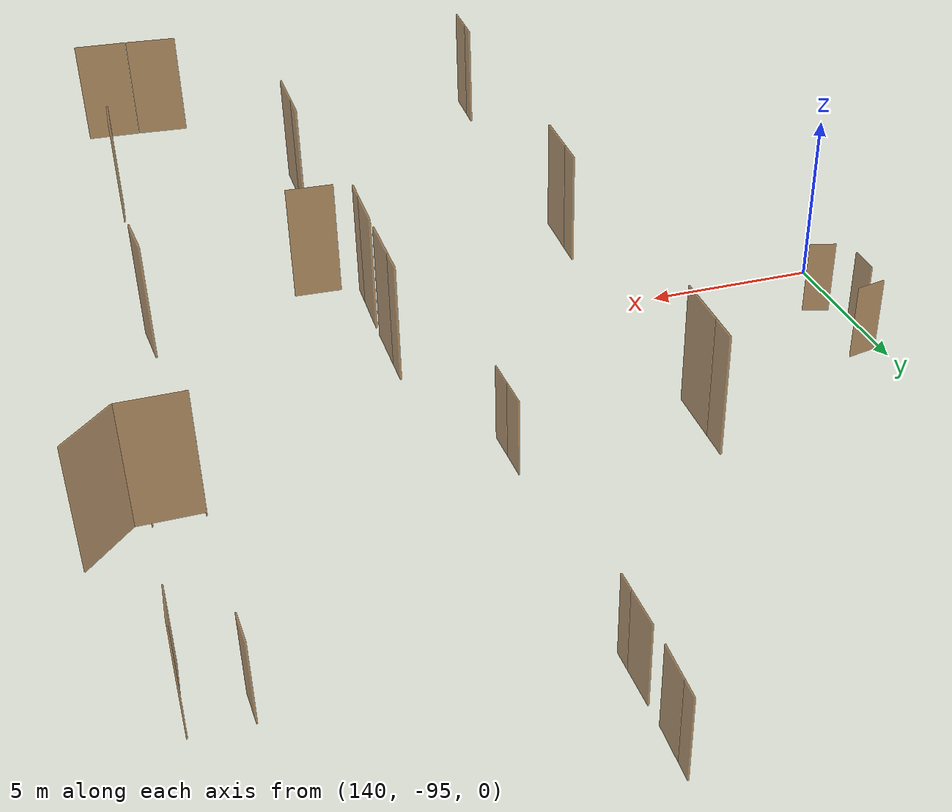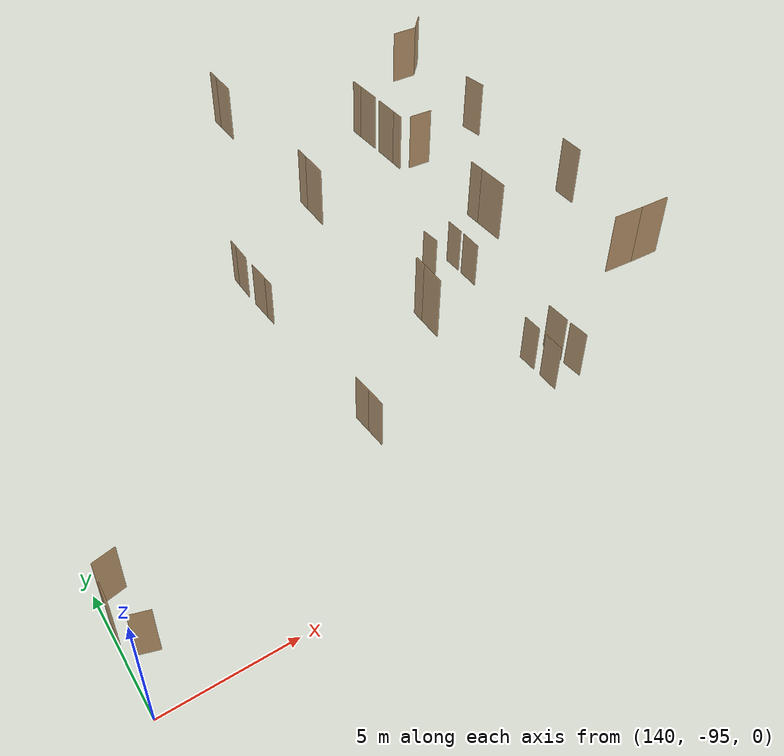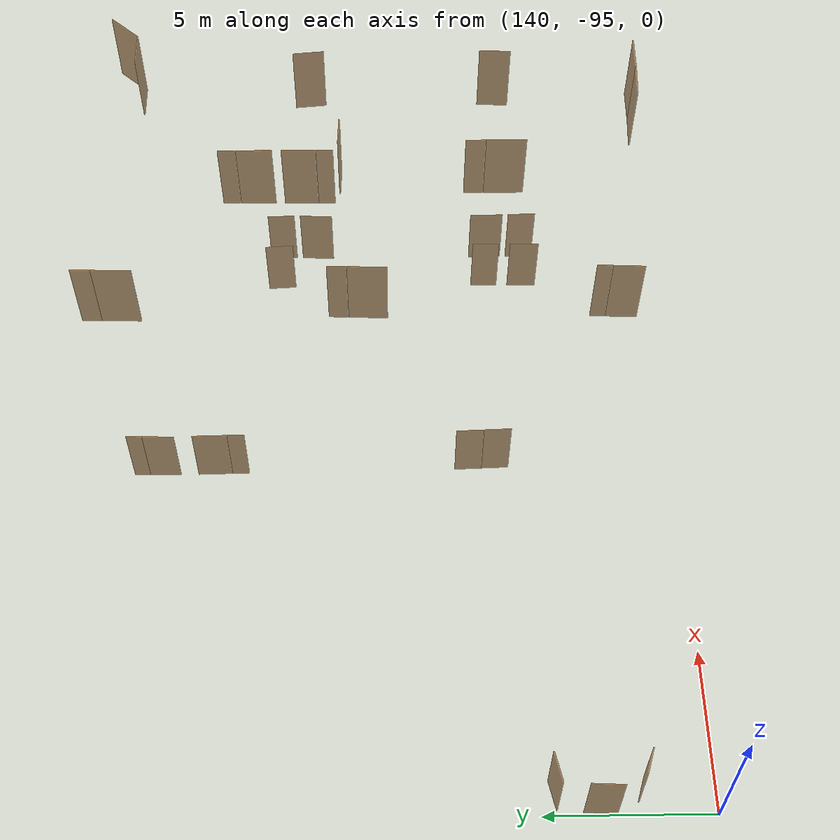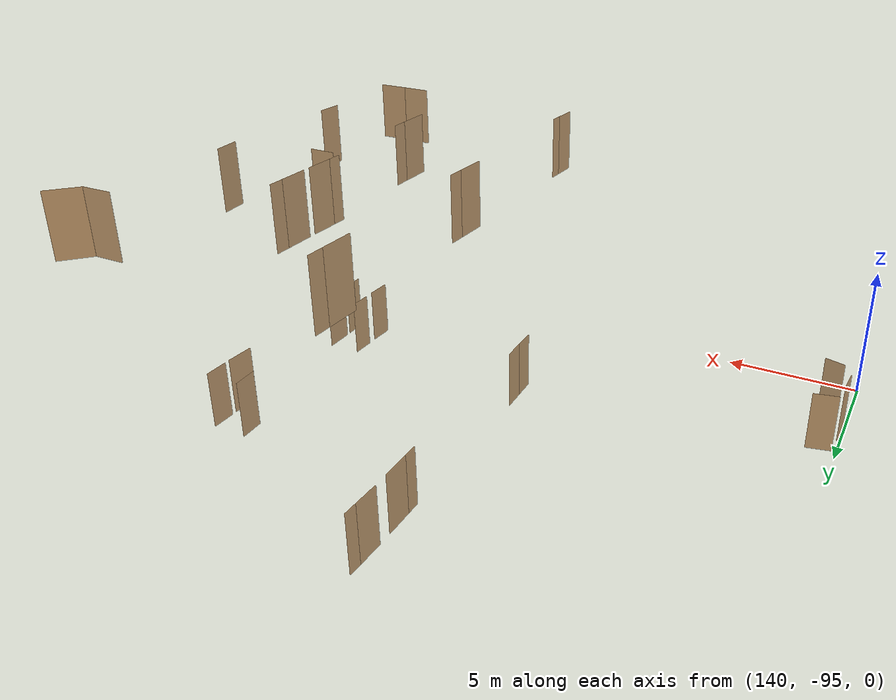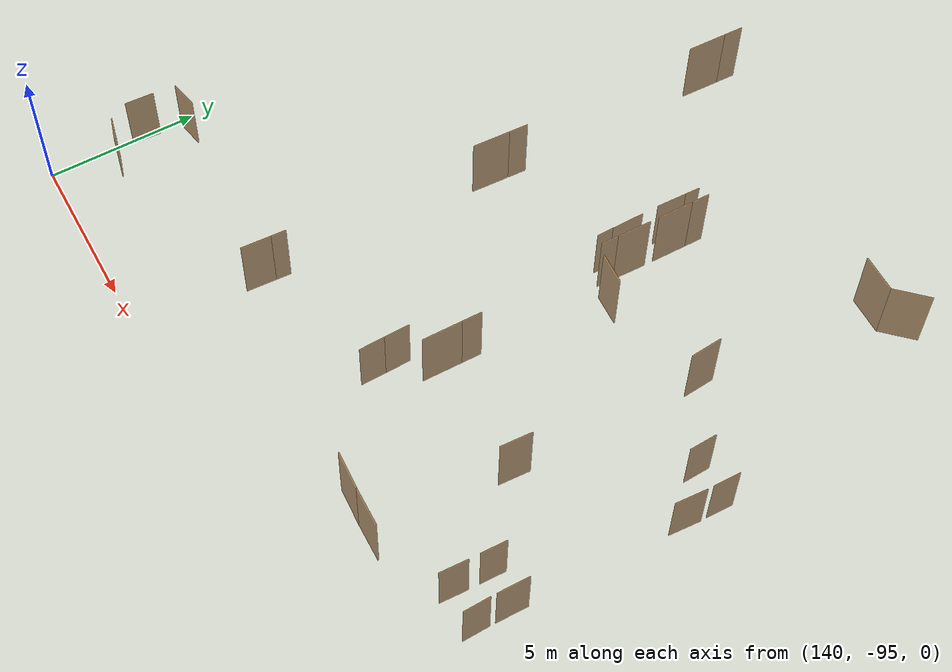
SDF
<sdf version="1.7">
 <world name="sim_world">
  <model name="puerta82">
   <pose>160.45645597633776 -90.47160245541252 0.0 0 0 1.6164788078695695</pose>
   <link name="right">
    <pose>0 0 1.11 0 0 0</pose>
    <visual name="right_visual">
     <geometry><box><size>0.9186907120669721 0.03 2.2</size></box></geometry>
     <material>
      <ambient>0.5 0.25 0 0.6</ambient>
      <diffuse>0.5 0.25 0 0.6</diffuse>
      <pbr><metal><metalness>0.0</metalness></metal></pbr>
     </material>
    </visual>
    <collision name="right_collision">
     <geometry><box><size>0.9186907120669721 0.03 2.2</size></box></geometry>
     <surface><contact><collide_bitmask>0x02</collide_bitmask></contact></surface>
    </collision>
    <inertial>
     <mass>50.0</mass>
     <inertia><ixx>20.17041666666667</ixx><iyy>23.683302601825506</iyy><izz>3.5203859351588345</izz></inertia>
    </inertial>
   </link>
   <joint name="right_joint" type="revolute">
    <parent>world</parent>
    <child>right</child>
    <axis><xyz>0 0 1</xyz><limit><lower>0</lower><upper>1.57</upper></limit></axis>
    <pose>0.46434535603348603 0 0 0 0 0</pose>
   </joint>
   <plugin name="register_component" filename="libregister_component.so">
    <component name="Door">
     <v_max_door>0.5</v_max_door>
     <a_max_door>0.3</a_max_door>
     <a_nom_door>0.15</a_nom_door>
     <dx_min_door>0.01</dx_min_door>
     <f_max_door>500.0</f_max_door>
     <ros_interface>true</ros_interface>
     <door name="puerta82" type="SwingDoor" left_joint_name="empty_joint" right_joint_name="right_joint"/>
    </component>
   </plugin>
  </model>
  <model name="puerta83">
   <pose>159.1280466511555 -90.49268130545818 0.0 0 0 1.5417831272589189</pose>
   <link name="right">
    <pose>0 0 1.11 0 0 0</pose>
    <visual name="right_visual">
     <geometry><box><size>0.9602878923284857 0.03 2.2</size></box></geometry>
     <material>
      <ambient>0.5 0.25 0 0.6</ambient>
      <diffuse>0.5 0.25 0 0.6</diffuse>
      <pbr><metal><metalness>0.0</metalness></metal></pbr>
     </material>
    </visual>
    <collision name="right_collision">
     <geometry><box><size>0.9602878923284857 0.03 2.2</size></box></geometry>
     <surface><contact><collide_bitmask>0x02</collide_bitmask></contact></surface>
    </collision>
    <inertial>
     <mass>50.0</mass>
     <inertia><ixx>20.17041666666667</ixx><iyy>24.008970150636195</iyy><izz>3.846053483969522</izz></inertia>
    </inertial>
   </link>
   <joint name="right_joint" type="revolute">
    <parent>world</parent>
    <child>right</child>
    <axis><xyz>0 0 -1</xyz><limit><lower>0</lower><upper>1.57</upper></limit></axis>
    <pose>0.48514394616424283 0 0 0 0 0</pose>
   </joint>
   <plugin name="register_component" filename="libregister_component.so">
    <component name="Door">
     <v_max_door>0.5</v_max_door>
     <a_max_door>0.3</a_max_door>
     <a_nom_door>0.15</a_nom_door>
     <dx_min_door>0.01</dx_min_door>
     <f_max_door>500.0</f_max_door>
     <ros_interface>true</ros_interface>
     <door name="puerta83" type="SwingDoor" left_joint_name="empty_joint" right_joint_name="right_joint"/>
    </component>
   </plugin>
  </model>
  <model name="puerta84">
   <pose>159.14756877974068 -89.19532226237905 0.0 0 0 -1.582985679288863</pose>
   <link name="right">
    <pose>0 0 1.11 0 0 0</pose>
    <visual name="right_visual">
     <geometry><box><size>0.8840031950947633 0.03 2.2</size></box></geometry>
     <material>
      <ambient>0.5 0.25 0 0.6</ambient>
      <diffuse>0.5 0.25 0 0.6</diffuse>
      <pbr><metal><metalness>0.0</metalness></metal></pbr>
     </material>
    </visual>
    <collision name="right_collision">
     <geometry><box><size>0.8840031950947633 0.03 2.2</size></box></geometry>
     <surface><contact><collide_bitmask>0x02</collide_bitmask></contact></surface>
    </collision>
    <inertial>
     <mass>50.0</mass>
     <inertia><ixx>20.17041666666667</ixx><iyy>23.422756870573963</iyy><izz>3.2598402039072925</izz></inertia>
    </inertial>
   </link>
   <joint name="right_joint" type="revolute">
    <parent>world</parent>
    <child>right</child>
    <axis><xyz>0 0 1</xyz><limit><lower>0</lower><upper>1.57</upper></limit></axis>
    <pose>0.44700159754738167 0 0 0 0 0</pose>
   </joint>
   <plugin name="register_component" filename="libregister_component.so">
    <component name="Door">
     <v_max_door>0.5</v_max_door>
     <a_max_door>0.3</a_max_door>
     <a_nom_door>0.15</a_nom_door>
     <dx_min_door>0.01</dx_min_door>
     <f_max_door>500.0</f_max_door>
     <ros_interface>true</ros_interface>
     <door name="puerta84" type="SwingDoor" left_joint_name="empty_joint" right_joint_name="right_joint"/>
    </component>
   </plugin>
  </model>
  <model name="puerta85">
   <pose>160.43272649245404 -89.271496430059 0.0 0 0 -1.5662357016798674</pose>
   <link name="right">
    <pose>0 0 1.11 0 0 0</pose>
    <visual name="right_visual">
     <geometry><box><size>1.097050839072088 0.03 2.2</size></box></geometry>
     <material>
      <ambient>0.5 0.25 0 0.6</ambient>
      <diffuse>0.5 0.25 0 0.6</diffuse>
      <pbr><metal><metalness>0.0</metalness></metal></pbr>
     </material>
    </visual>
    <collision name="right_collision">
     <geometry><box><size>1.097050839072088 0.03 2.2</size></box></geometry>
     <surface><contact><collide_bitmask>0x02</collide_bitmask></contact></surface>
    </collision>
    <inertial>
     <mass>50.0</mass>
     <inertia><ixx>20.17041666666667</ixx><iyy>25.181335597953222</iyy><izz>5.018418931286551</izz></inertia>
    </inertial>
   </link>
   <joint name="right_joint" type="revolute">
    <parent>world</parent>
    <child>right</child>
    <axis><xyz>0 0 -1</xyz><limit><lower>0</lower><upper>1.57</upper></limit></axis>
    <pose>0.553525419536044 0 0 0 0 0</pose>
   </joint>
   <plugin name="register_component" filename="libregister_component.so">
    <component name="Door">
     <v_max_door>0.5</v_max_door>
     <a_max_door>0.3</a_max_door>
     <a_nom_door>0.15</a_nom_door>
     <dx_min_door>0.01</dx_min_door>
     <f_max_door>500.0</f_max_door>
     <ros_interface>true</ros_interface>
     <door name="puerta85" type="SwingDoor" left_joint_name="empty_joint" right_joint_name="right_joint"/>
    </component>
   </plugin>
  </model>
  <model name="puerta86">
   <pose>160.45538310073664 -83.41704567925645 0.0 0 0 1.524645002181131</pose>
   <link name="right">
    <pose>0 0 1.11 0 0 0</pose>
    <visual name="right_visual">
     <geometry><box><size>1.0816246900873259 0.03 2.2</size></box></geometry>
     <material>
      <ambient>0.5 0.25 0 0.6</ambient>
      <diffuse>0.5 0.25 0 0.6</diffuse>
      <pbr><metal><metalness>0.0</metalness></metal></pbr>
     </material>
    </visual>
    <collision name="right_collision">
     <geometry><box><size>1.0816246900873259 0.03 2.2</size></box></geometry>
     <surface><contact><collide_bitmask>0x02</collide_bitmask></contact></surface>
    </collision>
    <inertial>
     <mass>50.0</mass>
     <inertia><ixx>20.17041666666667</ixx><iyy>25.041299875860435</iyy><izz>4.878383209193766</izz></inertia>
    </inertial>
   </link>
   <joint name="right_joint" type="revolute">
    <parent>world</parent>
    <child>right</child>
    <axis><xyz>0 0 1</xyz><limit><lower>0</lower><upper>1.57</upper></limit></axis>
    <pose>0.5458123450436629 0 0 0 0 0</pose>
   </joint>
   <plugin name="register_component" filename="libregister_component.so">
    <component name="Door">
     <v_max_door>0.5</v_max_door>
     <a_max_door>0.3</a_max_door>
     <a_nom_door>0.15</a_nom_door>
     <dx_min_door>0.01</dx_min_door>
     <f_max_door>500.0</f_max_door>
     <ros_interface>true</ros_interface>
     <door name="puerta86" type="SwingDoor" left_joint_name="empty_joint" right_joint_name="right_joint"/>
    </component>
   </plugin>
  </model>
  <model name="puerta87">
   <pose>159.1257326057413 -82.19825899637743 0.0 0 0 -1.512059108779797</pose>
   <link name="right">
    <pose>0 0 1.11 0 0 0</pose>
    <visual name="right_visual">
     <geometry><box><size>0.9195773728870581 0.03 2.2</size></box></geometry>
     <material>
      <ambient>0.5 0.25 0 0.6</ambient>
      <diffuse>0.5 0.25 0 0.6</diffuse>
      <pbr><metal><metalness>0.0</metalness></metal></pbr>
     </material>
    </visual>
    <collision name="right_collision">
     <geometry><box><size>0.9195773728870581 0.03 2.2</size></box></geometry>
     <surface><contact><collide_bitmask>0x02</collide_bitmask></contact></surface>
    </collision>
    <inertial>
     <mass>50.0</mass>
     <inertia><ixx>20.17041666666667</ixx><iyy>23.69009393635777</iyy><izz>3.5271772696910983</izz></inertia>
    </inertial>
   </link>
   <joint name="right_joint" type="revolute">
    <parent>world</parent>
    <child>right</child>
    <axis><xyz>0 0 1</xyz><limit><lower>0</lower><upper>1.57</upper></limit></axis>
    <pose>0.46478868644352905 0 0 0 0 0</pose>
   </joint>
   <plugin name="register_component" filename="libregister_component.so">
    <component name="Door">
     <v_max_door>0.5</v_max_door>
     <a_max_door>0.3</a_max_door>
     <a_nom_door>0.15</a_nom_door>
     <dx_min_door>0.01</dx_min_door>
     <f_max_door>500.0</f_max_door>
     <ros_interface>true</ros_interface>
     <door name="puerta87" type="SwingDoor" left_joint_name="empty_joint" right_joint_name="right_joint"/>
    </component>
   </plugin>
  </model>
  <model name="puerta88">
   <pose>160.4764829875588 -82.2238817901455 0.0 0 0 -1.573382687183463</pose>
   <link name="right">
    <pose>0 0 1.11 0 0 0</pose>
    <visual name="right_visual">
     <geometry><box><size>0.9009796161264255 0.03 2.2</size></box></geometry>
     <material>
      <ambient>0.5 0.25 0 0.6</ambient>
      <diffuse>0.5 0.25 0 0.6</diffuse>
      <pbr><metal><metalness>0.0</metalness></metal></pbr>
     </material>
    </visual>
    <collision name="right_collision">
     <geometry><box><size>0.9009796161264255 0.03 2.2</size></box></geometry>
     <surface><contact><collide_bitmask>0x02</collide_bitmask></contact></surface>
    </collision>
    <inertial>
     <mass>50.0</mass>
     <inertia><ixx>20.17041666666667</ixx><iyy>23.549017786147175</iyy><izz>3.386101119480505</izz></inertia>
    </inertial>
   </link>
   <joint name="right_joint" type="revolute">
    <parent>world</parent>
    <child>right</child>
    <axis><xyz>0 0 -1</xyz><limit><lower>0</lower><upper>1.57</upper></limit></axis>
    <pose>0.45548980806321276 0 0 0 0 0</pose>
   </joint>
   <plugin name="register_component" filename="libregister_component.so">
    <component name="Door">
     <v_max_door>0.5</v_max_door>
     <a_max_door>0.3</a_max_door>
     <a_nom_door>0.15</a_nom_door>
     <dx_min_door>0.01</dx_min_door>
     <f_max_door>500.0</f_max_door>
     <ros_interface>true</ros_interface>
     <door name="puerta88" type="SwingDoor" left_joint_name="empty_joint" right_joint_name="right_joint"/>
    </component>
   </plugin>
  </model>
  <model name="puerta102">
   <pose>151.486816252172 -78.41109227150902 0.0 0 0 -1.591429125607501</pose>
   <link name="right">
    <pose>0.2484551401646219 0 1.11 0 0 0</pose>
    <visual name="right_visual">
     <geometry><box><size>0.9838205606584873 0.03 2.2</size></box></geometry>
     <material>
      <ambient>0.5 0.25 0 0.6</ambient>
      <diffuse>0.5 0.25 0 0.6</diffuse>
      <pbr><metal><metalness>0.0</metalness></metal></pbr>
     </material>
    </visual>
    <collision name="right_collision">
     <geometry><box><size>0.9838205606584873 0.03 2.2</size></box></geometry>
     <surface><contact><collide_bitmask>0x02</collide_bitmask></contact></surface>
    </collision>
    <inertial>
     <mass>50.0</mass>
     <inertia><ixx>20.17041666666667</ixx><iyy>24.19959539822659</iyy><izz>4.036678731559919</izz></inertia>
    </inertial>
   </link>
   <joint name="right_joint" type="revolute">
    <parent>world</parent>
    <child>right</child>
    <axis><xyz>0 0 -1</xyz><limit><lower>0</lower><upper>1.57</upper></limit></axis>
    <pose>0.49691028032924367 0 0 0 0 0</pose>
   </joint>
   <link name="left">
    <pose>-0.49691028032924367 0 1.11 0 0 0</pose>
    <visual name="left_visual">
     <geometry><box><size>0.48691028032924377 0.03 2.2</size></box></geometry>
     <material>
      <ambient>0.5 0.25 0 0.6</ambient>
      <diffuse>0.5 0.25 0 0.6</diffuse>
      <pbr><metal><metalness>0.0</metalness></metal></pbr>
     </material>
    </visual>
    <collision name="left_collision">
     <geometry><box><size>0.48691028032924377 0.03 2.2</size></box></geometry>
     <surface><contact><collide_bitmask>0x02</collide_bitmask></contact></surface>
    </collision>
    <inertial>
     <mass>50.0</mass>
     <inertia><ixx>20.17041666666667</ixx><iyy>21.154506754542933</iyy><izz>0.9915900878762616</izz></inertia>
    </inertial>
   </link>
   <joint name="left_joint" type="revolute">
    <parent>world</parent>
    <child>left</child>
    <axis><xyz>0 0 -1</xyz><limit><lower>-1.57</lower><upper>0</upper></limit></axis>
    <pose>-0.2484551401646219 0 0 0 0 0</pose>
   </joint>
   <plugin name="register_component" filename="libregister_component.so">
    <component name="Door">
     <v_max_door>0.5</v_max_door>
     <a_max_door>0.3</a_max_door>
     <a_nom_door>0.15</a_nom_door>
     <dx_min_door>0.01</dx_min_door>
     <f_max_door>500.0</f_max_door>
     <ros_interface>true</ros_interface>
     <door name="puerta102" type="DoubleSwingDoor" left_joint_name="left_joint" right_joint_name="right_joint"/>
    </component>
   </plugin>
  </model>
  <model name="puerta103">
   <pose>151.50204687835267 -80.52503586770389 0.0 0 0 1.5894869403281513</pose>
   <link name="right">
    <pose>0.2727684133909708 0 1.11 0 0 0</pose>
    <visual name="right_visual">
     <geometry><box><size>1.0810736535638832 0.03 2.2</size></box></geometry>
     <material>
      <ambient>0.5 0.25 0 0.6</ambient>
      <diffuse>0.5 0.25 0 0.6</diffuse>
      <pbr><metal><metalness>0.0</metalness></metal></pbr>
     </material>
    </visual>
    <collision name="right_collision">
     <geometry><box><size>1.0810736535638832 0.03 2.2</size></box></geometry>
     <surface><contact><collide_bitmask>0x02</collide_bitmask></contact></surface>
    </collision>
    <inertial>
     <mass>50.0</mass>
     <inertia><ixx>20.17041666666667</ixx><iyy>25.036334351791517</iyy><izz>4.873417685124846</izz></inertia>
    </inertial>
   </link>
   <joint name="right_joint" type="revolute">
    <parent>world</parent>
    <child>right</child>
    <axis><xyz>0 0 1</xyz><limit><lower>0</lower><upper>1.57</upper></limit></axis>
    <pose>0.5455368267819416 0 0 0 0 0</pose>
   </joint>
   <link name="left">
    <pose>-0.5455368267819416 0 1.11 0 0 0</pose>
    <visual name="left_visual">
     <geometry><box><size>0.5355368267819416 0.03 2.2</size></box></geometry>
     <material>
      <ambient>0.5 0.25 0 0.6</ambient>
      <diffuse>0.5 0.25 0 0.6</diffuse>
      <pbr><metal><metalness>0.0</metalness></metal></pbr>
     </material>
    </visual>
    <collision name="left_collision">
     <geometry><box><size>0.5355368267819416 0.03 2.2</size></box></geometry>
     <surface><contact><collide_bitmask>0x02</collide_bitmask></contact></surface>
    </collision>
    <inertial>
     <mass>50.0</mass>
     <inertia><ixx>20.17041666666667</ixx><iyy>21.36166538683197</iyy><izz>1.1987487201652973</izz></inertia>
    </inertial>
   </link>
   <joint name="left_joint" type="revolute">
    <parent>world</parent>
    <child>left</child>
    <axis><xyz>0 0 1</xyz><limit><lower>-1.57</lower><upper>0</upper></limit></axis>
    <pose>-0.2727684133909708 0 0 0 0 0</pose>
   </joint>
   <plugin name="register_component" filename="libregister_component.so">
    <component name="Door">
     <v_max_door>0.5</v_max_door>
     <a_max_door>0.3</a_max_door>
     <a_nom_door>0.15</a_nom_door>
     <dx_min_door>0.01</dx_min_door>
     <f_max_door>500.0</f_max_door>
     <ros_interface>true</ros_interface>
     <door name="puerta103" type="DoubleSwingDoor" left_joint_name="left_joint" right_joint_name="right_joint"/>
    </component>
   </plugin>
  </model>
  <model name="puerta104">
   <pose>151.5937882606372 -88.79854762095091 0.0 0 0 -1.5354115795646175</pose>
   <link name="right">
    <pose>0.4323028895662816 0 1.11 0 0 0</pose>
    <visual name="right_visual">
     <geometry><box><size>0.8546057791325632 0.03 2.2</size></box></geometry>
     <material>
      <ambient>0.5 0.25 0 0.6</ambient>
      <diffuse>0.5 0.25 0 0.6</diffuse>
      <pbr><metal><metalness>0.0</metalness></metal></pbr>
     </material>
    </visual>
    <collision name="right_collision">
     <geometry><box><size>0.8546057791325632 0.03 2.2</size></box></geometry>
     <surface><contact><collide_bitmask>0x02</collide_bitmask></contact></surface>
    </collision>
    <inertial>
     <mass>50.0</mass>
     <inertia><ixx>20.17041666666667</ixx><iyy>23.209795990528235</iyy><izz>3.0468793238615643</izz></inertia>
    </inertial>
   </link>
   <joint name="right_joint" type="revolute">
    <parent>world</parent>
    <child>right</child>
    <axis><xyz>0 0 -1</xyz><limit><lower>0</lower><upper>1.57</upper></limit></axis>
    <pose>0.4323028895662816 0 0 0 0 0</pose>
   </joint>
   <link name="left">
    <pose>-0.4323028895662816 0 1.11 0 0 0</pose>
    <visual name="left_visual">
     <geometry><box><size>0.8546057791325632 0.03 2.2</size></box></geometry>
     <material>
      <ambient>0.5 0.25 0 0.6</ambient>
      <diffuse>0.5 0.25 0 0.6</diffuse>
      <pbr><metal><metalness>0.0</metalness></metal></pbr>
     </material>
    </visual>
    <collision name="left_collision">
     <geometry><box><size>0.8546057791325632 0.03 2.2</size></box></geometry>
     <surface><contact><collide_bitmask>0x02</collide_bitmask></contact></surface>
    </collision>
    <inertial>
     <mass>50.0</mass>
     <inertia><ixx>20.17041666666667</ixx><iyy>23.209795990528235</iyy><izz>3.0468793238615643</izz></inertia>
    </inertial>
   </link>
   <joint name="left_joint" type="revolute">
    <parent>world</parent>
    <child>left</child>
    <axis><xyz>0 0 -1</xyz><limit><lower>-1.57</lower><upper>0</upper></limit></axis>
    <pose>-0.4323028895662816 0 0 0 0 0</pose>
   </joint>
   <plugin name="register_component" filename="libregister_component.so">
    <component name="Door">
     <v_max_door>0.5</v_max_door>
     <a_max_door>0.3</a_max_door>
     <a_nom_door>0.15</a_nom_door>
     <dx_min_door>0.01</dx_min_door>
     <f_max_door>500.0</f_max_door>
     <ros_interface>true</ros_interface>
     <door name="puerta104" type="DoubleSwingDoor" left_joint_name="left_joint" right_joint_name="right_joint"/>
    </component>
   </plugin>
  </model>
  <model name="puerta167">
   <pose>140.09407646447517 -91.66287303463912 0.0 0 0 -1.6193847600354792</pose>
   <link name="right">
    <pose>0 0 1.11 0 0 0</pose>
    <visual name="right_visual">
     <geometry><box><size>0.9654063535677858 0.03 2.2</size></box></geometry>
     <material>
      <ambient>0.5 0.25 0 0.6</ambient>
      <diffuse>0.5 0.25 0 0.6</diffuse>
      <pbr><metal><metalness>0.0</metalness></metal></pbr>
     </material>
    </visual>
    <collision name="right_collision">
     <geometry><box><size>0.9654063535677858 0.03 2.2</size></box></geometry>
     <surface><contact><collide_bitmask>0x02</collide_bitmask></contact></surface>
    </collision>
    <inertial>
     <mass>50.0</mass>
     <inertia><ixx>20.17041666666667</ixx><iyy>24.050039281287706</iyy><izz>3.8871226146210365</izz></inertia>
    </inertial>
   </link>
   <joint name="right_joint" type="revolute">
    <parent>world</parent>
    <child>right</child>
    <axis><xyz>0 0 1</xyz><limit><lower>0</lower><upper>1.57</upper></limit></axis>
    <pose>0.4877031767838929 0 0 0 0 0</pose>
   </joint>
   <plugin name="register_component" filename="libregister_component.so">
    <component name="Door">
     <v_max_door>0.5</v_max_door>
     <a_max_door>0.3</a_max_door>
     <a_nom_door>0.15</a_nom_door>
     <dx_min_door>0.01</dx_min_door>
     <f_max_door>500.0</f_max_door>
     <ros_interface>true</ros_interface>
     <door name="puerta167" type="SwingDoor" left_joint_name="empty_joint" right_joint_name="right_joint"/>
    </component>
   </plugin>
  </model>
  <model name="puerta168">
   <pose>140.6153046756339 -90.34075370562815 0.0 0 0 -2.9284478798505345</pose>
   <link name="right">
    <pose>0 0 1.11 0 0 0</pose>
    <visual name="right_visual">
     <geometry><box><size>0.9053232458259489 0.03 2.2</size></box></geometry>
     <material>
      <ambient>0.5 0.25 0 0.6</ambient>
      <diffuse>0.5 0.25 0 0.6</diffuse>
      <pbr><metal><metalness>0.0</metalness></metal></pbr>
     </material>
    </visual>
    <collision name="right_collision">
     <geometry><box><size>0.9053232458259489 0.03 2.2</size></box></geometry>
     <surface><contact><collide_bitmask>0x02</collide_bitmask></contact></surface>
    </collision>
    <inertial>
     <mass>50.0</mass>
     <inertia><ixx>20.17041666666667</ixx><iyy>23.581709080970136</iyy><izz>3.418792414303465</izz></inertia>
    </inertial>
   </link>
   <joint name="right_joint" type="revolute">
    <parent>world</parent>
    <child>right</child>
    <axis><xyz>0 0 1</xyz><limit><lower>0</lower><upper>1.2211111111111113</upper></limit></axis>
    <pose>0.45766162291297446 0 0 0 0 0</pose>
   </joint>
   <plugin name="register_component" filename="libregister_component.so">
    <component name="Door">
     <v_max_door>0.5</v_max_door>
     <a_max_door>0.3</a_max_door>
     <a_nom_door>0.15</a_nom_door>
     <dx_min_door>0.01</dx_min_door>
     <f_max_door>500.0</f_max_door>
     <ros_interface>true</ros_interface>
     <door name="puerta168" type="SwingDoor" left_joint_name="empty_joint" right_joint_name="right_joint"/>
    </component>
   </plugin>
  </model>
  <model name="puerta169">
   <pose>140.7538318488381 -92.87124651315426 0.0 0 0 2.8404333758325078</pose>
   <link name="right">
    <pose>0 0 1.11 0 0 0</pose>
    <visual name="right_visual">
     <geometry><box><size>0.7725295544783084 0.03 2.2</size></box></geometry>
     <material>
      <ambient>0.5 0.25 0 0.6</ambient>
      <diffuse>0.5 0.25 0 0.6</diffuse>
      <pbr><metal><metalness>0.0</metalness></metal></pbr>
     </material>
    </visual>
    <collision name="right_collision">
     <geometry><box><size>0.7725295544783084 0.03 2.2</size></box></geometry>
     <surface><contact><collide_bitmask>0x02</collide_bitmask></contact></surface>
    </collision>
    <inertial>
     <mass>50.0</mass>
     <inertia><ixx>20.17041666666667</ixx><iyy>22.653341302260227</iyy><izz>2.490424635593557</izz></inertia>
    </inertial>
   </link>
   <joint name="right_joint" type="revolute">
    <parent>world</parent>
    <child>right</child>
    <axis><xyz>0 0 -1</xyz><limit><lower>0</lower><upper>1.2211111111111113</upper></limit></axis>
    <pose>0.3912647772391542 0 0 0 0 0</pose>
   </joint>
   <plugin name="register_component" filename="libregister_component.so">
    <component name="Door">
     <v_max_door>0.5</v_max_door>
     <a_max_door>0.3</a_max_door>
     <a_nom_door>0.15</a_nom_door>
     <dx_min_door>0.01</dx_min_door>
     <f_max_door>500.0</f_max_door>
     <ros_interface>true</ros_interface>
     <door name="puerta169" type="SwingDoor" left_joint_name="empty_joint" right_joint_name="right_joint"/>
    </component>
   </plugin>
  </model>
  <model name="puerta218">
   <pose>151.57974586723205 -78.12996180058911 8.0 0 0 -1.5939798618854046</pose>
   <link name="right">
    <pose>0.2782149159542824 0 1.11 0 0 0</pose>
    <visual name="right_visual">
     <geometry><box><size>1.102859663817129 0.03 2.2</size></box></geometry>
     <material>
      <ambient>0.5 0.25 0 0.6</ambient>
      <diffuse>0.5 0.25 0 0.6</diffuse>
      <pbr><metal><metalness>0.0</metalness></metal></pbr>
     </material>
    </visual>
    <collision name="right_collision">
     <geometry><box><size>1.102859663817129 0.03 2.2</size></box></geometry>
     <surface><contact><collide_bitmask>0x02</collide_bitmask></contact></surface>
    </collision>
    <inertial>
     <mass>50.0</mass>
     <inertia><ixx>20.17041666666667</ixx><iyy>25.23458099197847</iyy><izz>5.0716643253117955</izz></inertia>
    </inertial>
   </link>
   <joint name="right_joint" type="revolute">
    <parent>world</parent>
    <child>right</child>
    <axis><xyz>0 0 -1</xyz><limit><lower>0</lower><upper>1.57</upper></limit></axis>
    <pose>0.5564298319085645 0 0 0 0 0</pose>
   </joint>
   <link name="left">
    <pose>-0.5564298319085645 0 1.11 0 0 0</pose>
    <visual name="left_visual">
     <geometry><box><size>0.5464298319085648 0.03 2.2</size></box></geometry>
     <material>
      <ambient>0.5 0.25 0 0.6</ambient>
      <diffuse>0.5 0.25 0 0.6</diffuse>
      <pbr><metal><metalness>0.0</metalness></metal></pbr>
     </material>
    </visual>
    <collision name="left_collision">
     <geometry><box><size>0.5464298319085648 0.03 2.2</size></box></geometry>
     <surface><contact><collide_bitmask>0x02</collide_bitmask></contact></surface>
    </collision>
    <inertial>
     <mass>50.0</mass>
     <inertia><ixx>20.17041666666667</ixx><iyy>21.410773171665095</iyy><izz>1.2478565049984265</izz></inertia>
    </inertial>
   </link>
   <joint name="left_joint" type="revolute">
    <parent>world</parent>
    <child>left</child>
    <axis><xyz>0 0 -1</xyz><limit><lower>-1.57</lower><upper>0</upper></limit></axis>
    <pose>-0.2782149159542824 0 0 0 0 0</pose>
   </joint>
   <plugin name="register_component" filename="libregister_component.so">
    <component name="Door">
     <v_max_door>0.5</v_max_door>
     <a_max_door>0.3</a_max_door>
     <a_nom_door>0.15</a_nom_door>
     <dx_min_door>0.01</dx_min_door>
     <f_max_door>500.0</f_max_door>
     <ros_interface>true</ros_interface>
     <door name="puerta218" type="DoubleSwingDoor" left_joint_name="left_joint" right_joint_name="right_joint"/>
    </component>
   </plugin>
  </model>
  <model name="puerta219">
   <pose>155.91374920754674 -81.8161582134454 8.0 0 0 -1.5704598308476818</pose>
   <link name="right">
    <pose>0.25977823778828724 0 1.11 0 0 0</pose>
    <visual name="right_visual">
     <geometry><box><size>1.029112951153149 0.03 2.2</size></box></geometry>
     <material>
      <ambient>0.5 0.25 0 0.6</ambient>
      <diffuse>0.5 0.25 0 0.6</diffuse>
      <pbr><metal><metalness>0.0</metalness></metal></pbr>
     </material>
    </visual>
    <collision name="right_collision">
     <geometry><box><size>1.029112951153149 0.03 2.2</size></box></geometry>
     <surface><contact><collide_bitmask>0x02</collide_bitmask></contact></surface>
    </collision>
    <inertial>
     <mass>50.0</mass>
     <inertia><ixx>20.17041666666667</ixx><iyy>24.5794727759631</iyy><izz>4.4165561092964305</izz></inertia>
    </inertial>
   </link>
   <joint name="right_joint" type="revolute">
    <parent>world</parent>
    <child>right</child>
    <axis><xyz>0 0 1</xyz><limit><lower>0</lower><upper>1.57</upper></limit></axis>
    <pose>0.5195564755765745 0 0 0 0 0</pose>
   </joint>
   <link name="left">
    <pose>-0.5195564755765745 0 1.11 0 0 0</pose>
    <visual name="left_visual">
     <geometry><box><size>0.5095564755765745 0.03 2.2</size></box></geometry>
     <material>
      <ambient>0.5 0.25 0 0.6</ambient>
      <diffuse>0.5 0.25 0 0.6</diffuse>
      <pbr><metal><metalness>0.0</metalness></metal></pbr>
     </material>
    </visual>
    <collision name="left_collision">
     <geometry><box><size>0.5095564755765745 0.03 2.2</size></box></geometry>
     <surface><contact><collide_bitmask>0x02</collide_bitmask></contact></surface>
    </collision>
    <inertial>
     <mass>50.0</mass>
     <inertia><ixx>20.17041666666667</ixx><iyy>21.248532507508422</iyy><izz>1.0856158408417507</izz></inertia>
    </inertial>
   </link>
   <joint name="left_joint" type="revolute">
    <parent>world</parent>
    <child>left</child>
    <axis><xyz>0 0 1</xyz><limit><lower>-1.57</lower><upper>0</upper></limit></axis>
    <pose>-0.25977823778828724 0 0 0 0 0</pose>
   </joint>
   <plugin name="register_component" filename="libregister_component.so">
    <component name="Door">
     <v_max_door>0.5</v_max_door>
     <a_max_door>0.3</a_max_door>
     <a_nom_door>0.15</a_nom_door>
     <dx_min_door>0.01</dx_min_door>
     <f_max_door>500.0</f_max_door>
     <ros_interface>true</ros_interface>
     <door name="puerta219" type="DoubleSwingDoor" left_joint_name="left_joint" right_joint_name="right_joint"/>
    </component>
   </plugin>
  </model>
  <model name="puerta220">
   <pose>155.90193543695835 -83.59636870114936 8.0 0 0 1.5544606358503945</pose>
   <link name="right">
    <pose>0.24818536942950414 0 1.11 0 0 0</pose>
    <visual name="right_visual">
     <geometry><box><size>0.9827414777180165 0.03 2.2</size></box></geometry>
     <material>
      <ambient>0.5 0.25 0 0.6</ambient>
      <diffuse>0.5 0.25 0 0.6</diffuse>
      <pbr><metal><metalness>0.0</metalness></metal></pbr>
     </material>
    </visual>
    <collision name="right_collision">
     <geometry><box><size>0.9827414777180165 0.03 2.2</size></box></geometry>
     <surface><contact><collide_bitmask>0x02</collide_bitmask></contact></surface>
    </collision>
    <inertial>
     <mass>50.0</mass>
     <inertia><ixx>20.17041666666667</ixx><iyy>24.190753383447465</iyy><izz>4.0278367167807945</izz></inertia>
    </inertial>
   </link>
   <joint name="right_joint" type="revolute">
    <parent>world</parent>
    <child>right</child>
    <axis><xyz>0 0 -1</xyz><limit><lower>0</lower><upper>1.57</upper></limit></axis>
    <pose>0.49637073885900823 0 0 0 0 0</pose>
   </joint>
   <link name="left">
    <pose>-0.49637073885900823 0 1.11 0 0 0</pose>
    <visual name="left_visual">
     <geometry><box><size>0.4863707388590083 0.03 2.2</size></box></geometry>
     <material>
      <ambient>0.5 0.25 0 0.6</ambient>
      <diffuse>0.5 0.25 0 0.6</diffuse>
      <pbr><metal><metalness>0.0</metalness></metal></pbr>
     </material>
    </visual>
    <collision name="left_collision">
     <geometry><box><size>0.4863707388590083 0.03 2.2</size></box></geometry>
     <surface><contact><collide_bitmask>0x02</collide_bitmask></contact></surface>
    </collision>
    <inertial>
     <mass>50.0</mass>
     <inertia><ixx>20.17041666666667</ixx><iyy>21.152318731742746</iyy><izz>0.9894020650760735</izz></inertia>
    </inertial>
   </link>
   <joint name="left_joint" type="revolute">
    <parent>world</parent>
    <child>left</child>
    <axis><xyz>0 0 -1</xyz><limit><lower>-1.57</lower><upper>0</upper></limit></axis>
    <pose>-0.24818536942950414 0 0 0 0 0</pose>
   </joint>
   <plugin name="register_component" filename="libregister_component.so">
    <component name="Door">
     <v_max_door>0.5</v_max_door>
     <a_max_door>0.3</a_max_door>
     <a_nom_door>0.15</a_nom_door>
     <dx_min_door>0.01</dx_min_door>
     <f_max_door>500.0</f_max_door>
     <ros_interface>true</ros_interface>
     <door name="puerta220" type="DoubleSwingDoor" left_joint_name="left_joint" right_joint_name="right_joint"/>
    </component>
   </plugin>
  </model>
  <model name="puerta221">
   <pose>151.60434480208153 -85.02158450632652 8.0 0 0 -1.6109730241127107</pose>
   <link name="right">
    <pose>0.2753062510154971 0 1.11 0 0 0</pose>
    <visual name="right_visual">
     <geometry><box><size>1.091225004061988 0.03 2.2</size></box></geometry>
     <material>
      <ambient>0.5 0.25 0 0.6</ambient>
      <diffuse>0.5 0.25 0 0.6</diffuse>
      <pbr><metal><metalness>0.0</metalness></metal></pbr>
     </material>
    </visual>
    <collision name="right_collision">
     <geometry><box><size>1.091225004061988 0.03 2.2</size></box></geometry>
     <surface><contact><collide_bitmask>0x02</collide_bitmask></contact></surface>
    </collision>
    <inertial>
     <mass>50.0</mass>
     <inertia><ixx>20.17041666666667</ixx><iyy>25.128216706208693</iyy><izz>4.965300039542023</izz></inertia>
    </inertial>
   </link>
   <joint name="right_joint" type="revolute">
    <parent>world</parent>
    <child>right</child>
    <axis><xyz>0 0 -1</xyz><limit><lower>0</lower><upper>1.57</upper></limit></axis>
    <pose>0.550612502030994 0 0 0 0 0</pose>
   </joint>
   <link name="left">
    <pose>-0.550612502030994 0 1.11 0 0 0</pose>
    <visual name="left_visual">
     <geometry><box><size>0.5406125020309942 0.03 2.2</size></box></geometry>
     <material>
      <ambient>0.5 0.25 0 0.6</ambient>
      <diffuse>0.5 0.25 0 0.6</diffuse>
      <pbr><metal><metalness>0.0</metalness></metal></pbr>
     </material>
    </visual>
    <collision name="left_collision">
     <geometry><box><size>0.5406125020309942 0.03 2.2</size></box></geometry>
     <surface><contact><collide_bitmask>0x02</collide_bitmask></contact></surface>
    </collision>
    <inertial>
     <mass>50.0</mass>
     <inertia><ixx>20.17041666666667</ixx><iyy>21.384424488967554</iyy><izz>1.2215078223008822</izz></inertia>
    </inertial>
   </link>
   <joint name="left_joint" type="revolute">
    <parent>world</parent>
    <child>left</child>
    <axis><xyz>0 0 -1</xyz><limit><lower>-1.57</lower><upper>0</upper></limit></axis>
    <pose>-0.2753062510154971 0 0 0 0 0</pose>
   </joint>
   <plugin name="register_component" filename="libregister_component.so">
    <component name="Door">
     <v_max_door>0.5</v_max_door>
     <a_max_door>0.3</a_max_door>
     <a_nom_door>0.15</a_nom_door>
     <dx_min_door>0.01</dx_min_door>
     <f_max_door>500.0</f_max_door>
     <ros_interface>true</ros_interface>
     <door name="puerta221" type="DoubleSwingDoor" left_joint_name="left_joint" right_joint_name="right_joint"/>
    </component>
   </plugin>
  </model>
  <model name="puerta222">
   <pose>156.23048773352235 -89.01112308207077 8.0 0 0 1.5711328227420898</pose>
   <link name="right">
    <pose>0.5880442943342433 0 1.11 0 0 0</pose>
    <visual name="right_visual">
     <geometry><box><size>0.5780442943342432 0.03 2.2</size></box></geometry>
     <material>
      <ambient>0.5 0.25 0 0.6</ambient>
      <diffuse>0.5 0.25 0 0.6</diffuse>
      <pbr><metal><metalness>0.0</metalness></metal></pbr>
     </material>
    </visual>
    <collision name="right_collision">
     <geometry><box><size>0.5780442943342432 0.03 2.2</size></box></geometry>
     <surface><contact><collide_bitmask>0x02</collide_bitmask></contact></surface>
    </collision>
    <inertial>
     <mass>50.0</mass>
     <inertia><ixx>20.17041666666667</ixx><iyy>21.55889669255156</iyy><izz>1.3959800258848885</izz></inertia>
    </inertial>
   </link>
   <joint name="right_joint" type="revolute">
    <parent>world</parent>
    <child>right</child>
    <axis><xyz>0 0 -1</xyz><limit><lower>0</lower><upper>1.57</upper></limit></axis>
    <pose>0.2940221471671216 0 0 0 0 0</pose>
   </joint>
   <link name="left">
    <pose>-0.2940221471671216 0 1.11 0 0 0</pose>
    <visual name="left_visual">
     <geometry><box><size>1.1660885886684866 0.03 2.2</size></box></geometry>
     <material>
      <ambient>0.5 0.25 0 0.6</ambient>
      <diffuse>0.5 0.25 0 0.6</diffuse>
      <pbr><metal><metalness>0.0</metalness></metal></pbr>
     </material>
    </visual>
    <collision name="left_collision">
     <geometry><box><size>1.1660885886684866 0.03 2.2</size></box></geometry>
     <surface><contact><collide_bitmask>0x02</collide_bitmask></contact></surface>
    </collision>
    <inertial>
     <mass>50.0</mass>
     <inertia><ixx>20.17041666666667</ixx><iyy>25.83234415259527</iyy><izz>5.669427485928596</izz></inertia>
    </inertial>
   </link>
   <joint name="left_joint" type="revolute">
    <parent>world</parent>
    <child>left</child>
    <axis><xyz>0 0 -1</xyz><limit><lower>-1.57</lower><upper>0</upper></limit></axis>
    <pose>-0.5880442943342433 0 0 0 0 0</pose>
   </joint>
   <plugin name="register_component" filename="libregister_component.so">
    <component name="Door">
     <v_max_door>0.5</v_max_door>
     <a_max_door>0.3</a_max_door>
     <a_nom_door>0.15</a_nom_door>
     <dx_min_door>0.01</dx_min_door>
     <f_max_door>500.0</f_max_door>
     <ros_interface>true</ros_interface>
     <door name="puerta222" type="DoubleSwingDoor" left_joint_name="left_joint" right_joint_name="right_joint"/>
    </component>
   </plugin>
  </model>
  <model name="puerta223">
   <pose>159.87625688901997 -89.14307095776061 8.0 0 0 -1.6100249345536195</pose>
   <link name="right">
    <pose>0 0 1.11 0 0 0</pose>
    <visual name="right_visual">
     <geometry><box><size>0.9293113573955869 0.03 2.2</size></box></geometry>
     <material>
      <ambient>0.5 0.25 0 0.6</ambient>
      <diffuse>0.5 0.25 0 0.6</diffuse>
      <pbr><metal><metalness>0.0</metalness></metal></pbr>
     </material>
    </visual>
    <collision name="right_collision">
     <geometry><box><size>0.9293113573955869 0.03 2.2</size></box></geometry>
     <surface><contact><collide_bitmask>0x02</collide_bitmask></contact></surface>
    </collision>
    <inertial>
     <mass>50.0</mass>
     <inertia><ixx>20.17041666666667</ixx><iyy>23.765081662435122</iyy><izz>3.602164995768451</izz></inertia>
    </inertial>
   </link>
   <joint name="right_joint" type="revolute">
    <parent>world</parent>
    <child>right</child>
    <axis><xyz>0 0 -1</xyz><limit><lower>0</lower><upper>1.57</upper></limit></axis>
    <pose>0.46965567869779346 0 0 0 0 0</pose>
   </joint>
   <plugin name="register_component" filename="libregister_component.so">
    <component name="Door">
     <v_max_door>0.5</v_max_door>
     <a_max_door>0.3</a_max_door>
     <a_nom_door>0.15</a_nom_door>
     <dx_min_door>0.01</dx_min_door>
     <f_max_door>500.0</f_max_door>
     <ros_interface>true</ros_interface>
     <door name="puerta223" type="SwingDoor" left_joint_name="empty_joint" right_joint_name="right_joint"/>
    </component>
   </plugin>
  </model>
  <model name="puerta224">
   <pose>159.88054040229247 -83.55366792833567 8.0 0 0 1.6690158592262816</pose>
   <link name="right">
    <pose>0 0 1.11 0 0 0</pose>
    <visual name="right_visual">
     <geometry><box><size>0.9208717388508046 0.03 2.2</size></box></geometry>
     <material>
      <ambient>0.5 0.25 0 0.6</ambient>
      <diffuse>0.5 0.25 0 0.6</diffuse>
      <pbr><metal><metalness>0.0</metalness></metal></pbr>
     </material>
    </visual>
    <collision name="right_collision">
     <geometry><box><size>0.9208717388508046 0.03 2.2</size></box></geometry>
     <surface><contact><collide_bitmask>0x02</collide_bitmask></contact></surface>
    </collision>
    <inertial>
     <mass>50.0</mass>
     <inertia><ixx>20.17041666666667</ixx><iyy>23.700019830892106</iyy><izz>3.537103164225436</izz></inertia>
    </inertial>
   </link>
   <joint name="right_joint" type="revolute">
    <parent>world</parent>
    <child>right</child>
    <axis><xyz>0 0 1</xyz><limit><lower>0</lower><upper>1.57</upper></limit></axis>
    <pose>0.4654358694254023 0 0 0 0 0</pose>
   </joint>
   <plugin name="register_component" filename="libregister_component.so">
    <component name="Door">
     <v_max_door>0.5</v_max_door>
     <a_max_door>0.3</a_max_door>
     <a_nom_door>0.15</a_nom_door>
     <dx_min_door>0.01</dx_min_door>
     <f_max_door>500.0</f_max_door>
     <ros_interface>true</ros_interface>
     <door name="puerta224" type="SwingDoor" left_joint_name="empty_joint" right_joint_name="right_joint"/>
    </component>
   </plugin>
  </model>
  <model name="puerta225">
   <pose>160.11854490887052 -78.40970073117225 8.0 0 0 0.006811422036916728</pose>
   <link name="right">
    <pose>0 0 1.11 0 0 0</pose>
    <visual name="right_visual">
     <geometry><box><size>1.0687583552722812 0.03 2.2</size></box></geometry>
     <material>
      <ambient>0.5 0.25 0 0.6</ambient>
      <diffuse>0.5 0.25 0 0.6</diffuse>
      <pbr><metal><metalness>0.0</metalness></metal></pbr>
     </material>
    </visual>
    <collision name="right_collision">
     <geometry><box><size>1.0687583552722812 0.03 2.2</size></box></geometry>
     <surface><contact><collide_bitmask>0x02</collide_bitmask></contact></surface>
    </collision>
    <inertial>
     <mass>50.0</mass>
     <inertia><ixx>20.17041666666667</ixx><iyy>24.926018424851303</iyy><izz>4.763101758184632</izz></inertia>
    </inertial>
   </link>
   <joint name="right_joint" type="revolute">
    <parent>world</parent>
    <child>right</child>
    <axis><xyz>0 0 1</xyz><limit><lower>0</lower><upper>1.57</upper></limit></axis>
    <pose>0.5393791776361406 0 0 0 0 0</pose>
   </joint>
   <plugin name="register_component" filename="libregister_component.so">
    <component name="Door">
     <v_max_door>0.5</v_max_door>
     <a_max_door>0.3</a_max_door>
     <a_nom_door>0.15</a_nom_door>
     <dx_min_door>0.01</dx_min_door>
     <f_max_door>500.0</f_max_door>
     <ros_interface>true</ros_interface>
     <door name="puerta225" type="SwingDoor" left_joint_name="empty_joint" right_joint_name="right_joint"/>
    </component>
   </plugin>
  </model>
  <model name="puerta226">
   <pose>161.04305220631164 -77.98941608236261 8.0 0 0 0.8246297257109436</pose>
   <link name="right">
    <pose>0 0 1.11 0 0 0</pose>
    <visual name="right_visual">
     <geometry><box><size>1.1247207824611858 0.03 2.2</size></box></geometry>
     <material>
      <ambient>0.5 0.25 0 0.6</ambient>
      <diffuse>0.5 0.25 0 0.6</diffuse>
      <pbr><metal><metalness>0.0</metalness></metal></pbr>
     </material>
    </visual>
    <collision name="right_collision">
     <geometry><box><size>1.1247207824611858 0.03 2.2</size></box></geometry>
     <surface><contact><collide_bitmask>0x02</collide_bitmask></contact></surface>
    </collision>
    <inertial>
     <mass>50.0</mass>
     <inertia><ixx>20.17041666666667</ixx><iyy>25.437486827083763</iyy><izz>5.274570160417092</izz></inertia>
    </inertial>
   </link>
   <joint name="right_joint" type="revolute">
    <parent>world</parent>
    <child>right</child>
    <axis><xyz>0 0 1</xyz><limit><lower>0</lower><upper>1.57</upper></limit></axis>
    <pose>0.5673603912305929 0 0 0 0 0</pose>
   </joint>
   <plugin name="register_component" filename="libregister_component.so">
    <component name="Door">
     <v_max_door>0.5</v_max_door>
     <a_max_door>0.3</a_max_door>
     <a_nom_door>0.15</a_nom_door>
     <dx_min_door>0.01</dx_min_door>
     <f_max_door>500.0</f_max_door>
     <ros_interface>true</ros_interface>
     <door name="puerta226" type="SwingDoor" left_joint_name="empty_joint" right_joint_name="right_joint"/>
    </component>
   </plugin>
  </model>
  <model name="puerta229">
   <pose>151.54059965252523 -92.15501311941844 8.0 0 0 -1.6176185136970382</pose>
   <link name="right">
    <pose>0.21927717014729126 0 1.11 0 0 0</pose>
    <visual name="right_visual">
     <geometry><box><size>0.8671086805891649 0.03 2.2</size></box></geometry>
     <material>
      <ambient>0.5 0.25 0 0.6</ambient>
      <diffuse>0.5 0.25 0 0.6</diffuse>
      <pbr><metal><metalness>0.0</metalness></metal></pbr>
     </material>
    </visual>
    <collision name="right_collision">
     <geometry><box><size>0.8671086805891649 0.03 2.2</size></box></geometry>
     <surface><contact><collide_bitmask>0x02</collide_bitmask></contact></surface>
    </collision>
    <inertial>
     <mass>50.0</mass>
     <inertia><ixx>20.17041666666667</ixx><iyy>23.29948943313785</iyy><izz>3.136572766471177</izz></inertia>
    </inertial>
   </link>
   <joint name="right_joint" type="revolute">
    <parent>world</parent>
    <child>right</child>
    <axis><xyz>0 0 -1</xyz><limit><lower>0</lower><upper>1.57</upper></limit></axis>
    <pose>0.43855434029458246 0 0 0 0 0</pose>
   </joint>
   <link name="left">
    <pose>-0.43855434029458246 0 1.11 0 0 0</pose>
    <visual name="left_visual">
     <geometry><box><size>0.4285543402945825 0.03 2.2</size></box></geometry>
     <material>
      <ambient>0.5 0.25 0 0.6</ambient>
      <diffuse>0.5 0.25 0 0.6</diffuse>
      <pbr><metal><metalness>0.0</metalness></metal></pbr>
     </material>
    </visual>
    <collision name="left_collision">
     <geometry><box><size>0.4285543402945825 0.03 2.2</size></box></geometry>
     <surface><contact><collide_bitmask>0x02</collide_bitmask></contact></surface>
    </collision>
    <inertial>
     <mass>50.0</mass>
     <inertia><ixx>20.17041666666667</ixx><iyy>20.93191176077219</iyy><izz>0.7689950941055201</izz></inertia>
    </inertial>
   </link>
   <joint name="left_joint" type="revolute">
    <parent>world</parent>
    <child>left</child>
    <axis><xyz>0 0 -1</xyz><limit><lower>-1.57</lower><upper>0</upper></limit></axis>
    <pose>-0.21927717014729126 0 0 0 0 0</pose>
   </joint>
   <plugin name="register_component" filename="libregister_component.so">
    <component name="Door">
     <v_max_door>0.5</v_max_door>
     <a_max_door>0.3</a_max_door>
     <a_nom_door>0.15</a_nom_door>
     <dx_min_door>0.01</dx_min_door>
     <f_max_door>500.0</f_max_door>
     <ros_interface>true</ros_interface>
     <door name="puerta229" type="DoubleSwingDoor" left_joint_name="left_joint" right_joint_name="right_joint"/>
    </component>
   </plugin>
  </model>
  <model name="puerta232">
   <pose>158.62178518975114 -93.26944609094963 8.0 0 0 -0.05281797225124494</pose>
   <link name="right">
    <pose>0 0 1.11 0 0 0</pose>
    <visual name="right_visual">
     <geometry><box><size>1.0853043089225987 0.03 2.2</size></box></geometry>
     <material>
      <ambient>0.5 0.25 0 0.6</ambient>
      <diffuse>0.5 0.25 0 0.6</diffuse>
      <pbr><metal><metalness>0.0</metalness></metal></pbr>
     </material>
    </visual>
    <collision name="right_collision">
     <geometry><box><size>1.0853043089225987 0.03 2.2</size></box></geometry>
     <surface><contact><collide_bitmask>0x02</collide_bitmask></contact></surface>
    </collision>
    <inertial>
     <mass>50.0</mass>
     <inertia><ixx>20.17041666666667</ixx><iyy>25.074522679024838</iyy><izz>4.911606012358165</izz></inertia>
    </inertial>
   </link>
   <joint name="right_joint" type="revolute">
    <parent>world</parent>
    <child>right</child>
    <axis><xyz>0 0 -1</xyz><limit><lower>0</lower><upper>1.57</upper></limit></axis>
    <pose>0.5476521544612993 0 0 0 0 0</pose>
   </joint>
   <plugin name="register_component" filename="libregister_component.so">
    <component name="Door">
     <v_max_door>0.5</v_max_door>
     <a_max_door>0.3</a_max_door>
     <a_nom_door>0.15</a_nom_door>
     <dx_min_door>0.01</dx_min_door>
     <f_max_door>500.0</f_max_door>
     <ros_interface>true</ros_interface>
     <door name="puerta232" type="SwingDoor" left_joint_name="empty_joint" right_joint_name="right_joint"/>
    </component>
   </plugin>
  </model>
  <model name="puerta233">
   <pose>159.72719054458423 -93.30980495529357 8.0 0 0 3.1211011827944977</pose>
   <link name="right">
    <pose>0 0 1.11 0 0 0</pose>
    <visual name="right_visual">
     <geometry><box><size>1.1072684142320013 0.03 2.2</size></box></geometry>
     <material>
      <ambient>0.5 0.25 0 0.6</ambient>
      <diffuse>0.5 0.25 0 0.6</diffuse>
      <pbr><metal><metalness>0.0</metalness></metal></pbr>
     </material>
    </visual>
    <collision name="right_collision">
     <geometry><box><size>1.1072684142320013 0.03 2.2</size></box></geometry>
     <surface><contact><collide_bitmask>0x02</collide_bitmask></contact></surface>
    </collision>
    <inertial>
     <mass>50.0</mass>
     <inertia><ixx>20.17041666666667</ixx><iyy>25.275180588149382</iyy><izz>5.112263921482712</izz></inertia>
    </inertial>
   </link>
   <joint name="right_joint" type="revolute">
    <parent>world</parent>
    <child>right</child>
    <axis><xyz>0 0 1</xyz><limit><lower>0</lower><upper>1.57</upper></limit></axis>
    <pose>0.5586342071160006 0 0 0 0 0</pose>
   </joint>
   <plugin name="register_component" filename="libregister_component.so">
    <component name="Door">
     <v_max_door>0.5</v_max_door>
     <a_max_door>0.3</a_max_door>
     <a_nom_door>0.15</a_nom_door>
     <dx_min_door>0.01</dx_min_door>
     <f_max_door>500.0</f_max_door>
     <ros_interface>true</ros_interface>
     <door name="puerta233" type="SwingDoor" left_joint_name="empty_joint" right_joint_name="right_joint"/>
    </component>
   </plugin>
  </model>
  <model name="puerta243">
   <pose>156.66734857884774 -84.48943331256648 8.0 0 0 3.104924712477333</pose>
   <link name="right">
    <pose>0 0 1.11 0 0 0</pose>
    <visual name="right_visual">
     <geometry><box><size>0.8839551471512855 0.03 2.2</size></box></geometry>
     <material>
      <ambient>0.5 0.25 0 0.6</ambient>
      <diffuse>0.5 0.25 0 0.6</diffuse>
      <pbr><metal><metalness>0.0</metalness></metal></pbr>
     </material>
    </visual>
    <collision name="right_collision">
     <geometry><box><size>0.8839551471512855 0.03 2.2</size></box></geometry>
     <surface><contact><collide_bitmask>0x02</collide_bitmask></contact></surface>
    </collision>
    <inertial>
     <mass>50.0</mass>
     <inertia><ixx>20.17041666666667</ixx><iyy>23.422402925730218</iyy><izz>3.2594862590635456</izz></inertia>
    </inertial>
   </link>
   <joint name="right_joint" type="revolute">
    <parent>world</parent>
    <child>right</child>
    <axis><xyz>0 0 -1</xyz><limit><lower>0</lower><upper>1.57</upper></limit></axis>
    <pose>0.4469775735756428 0 0 0 0 0</pose>
   </joint>
   <plugin name="register_component" filename="libregister_component.so">
    <component name="Door">
     <v_max_door>0.5</v_max_door>
     <a_max_door>0.3</a_max_door>
     <a_nom_door>0.15</a_nom_door>
     <dx_min_door>0.01</dx_min_door>
     <f_max_door>500.0</f_max_door>
     <ros_interface>true</ros_interface>
     <door name="puerta243" type="SwingDoor" left_joint_name="empty_joint" right_joint_name="right_joint"/>
    </component>
   </plugin>
  </model>
 </world>
</sdf>
